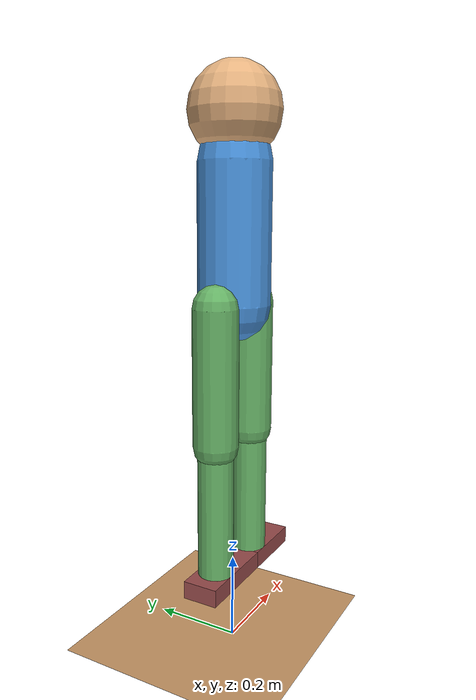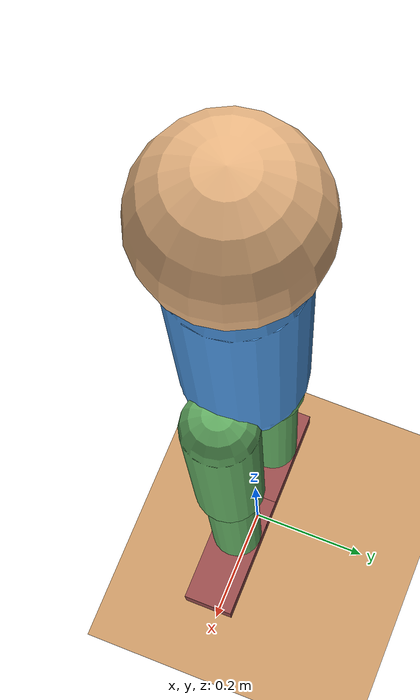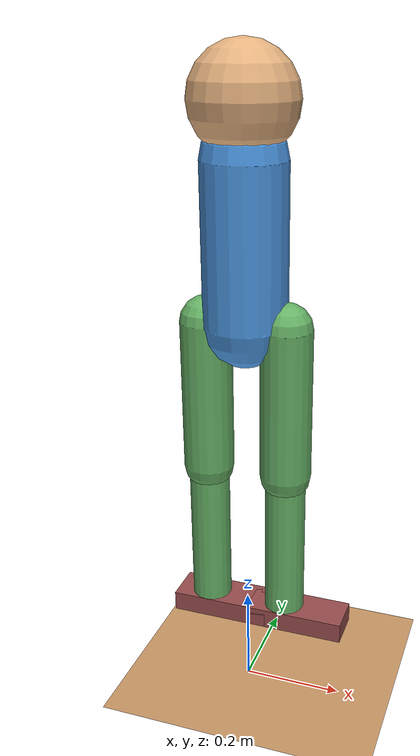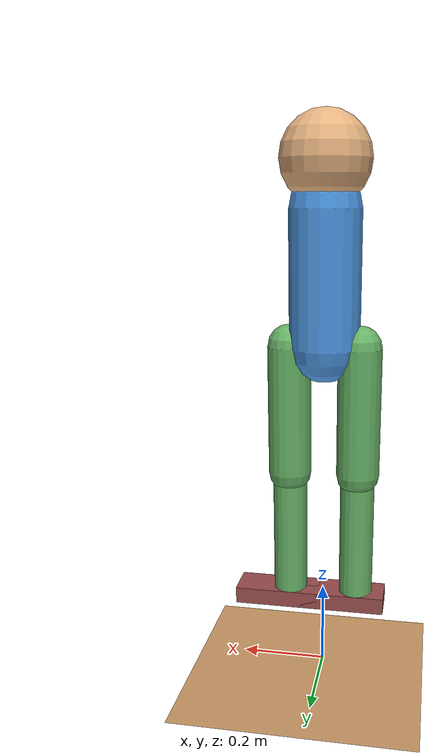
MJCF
<mujoco model="bipedal_walker">
  <option timestep="0.002" gravity="0 0 -9.81" integrator="RK4"/>

  <default>
    <joint armature="0.01" damping="0.5" limited="true"/>
    <geom condim="3" friction="1.0 0.5 0.5" rgba="0.8 0.6 0.4 1"/>
    <motor ctrllimited="true" ctrlrange="-1 1"/>
  </default>

  <visual>
    <rgba haze="0.15 0.25 0.35 1"/>
  </visual>

  <asset>
    <texture type="skybox" builtin="gradient" rgb1="0.3 0.5 0.7" rgb2="0 0 0" width="512" height="3072"/>
    <texture type="2d" name="groundplane" builtin="checker" mark="edge" rgb1="0.2 0.3 0.4" rgb2="0.1 0.2 0.3" markrgb="0.8 0.8 0.8" width="300" height="300"/>
    <material name="groundplane" texture="groundplane" texuniform="true" texrepeat="5 5" reflectance="0.2"/>
  </asset>

  <worldbody>
    <!-- Ground plane -->
    <geom name="floor" type="plane" size="50 50 0.1" material="groundplane"/>

    <!-- Torso (free floating body) -->
    <body name="torso" pos="0 0 0.8">
      <freejoint name="root"/>

      <!-- Torso body -->
      <geom name="torso_geom" type="capsule" fromto="0 0 0 0 0 0.3" size="0.08" rgba="0.3 0.6 0.9 1"/>

      <!-- Site for sensors -->
      <site name="torso_site" pos="0 0 0.15"/>

      <!-- Head -->
      <geom name="head" type="sphere" pos="0 0 0.4" size="0.1" rgba="0.9 0.7 0.5 1"/>

      <!-- ===== LEFT LEG ===== -->
      <body name="left_thigh" pos="-0.08 0 0">
        <!-- Hip joint: rotates leg forward/backward -->
        <joint name="left_hip" type="hinge" axis="0 1 0" range="-90 90"/>

        <!-- Thigh -->
        <geom name="left_thigh_geom" type="capsule" fromto="0 0 0 0 0 -0.3" size="0.05" rgba="0.4 0.7 0.4 1"/>

        <!-- Lower leg -->
        <body name="left_shin" pos="0 0 -0.3">
          <!-- Knee joint: only bends backward -->
          <joint name="left_knee" type="hinge" axis="0 1 0" range="-120 0"/>

          <!-- Shin -->
          <geom name="left_shin_geom" type="capsule" fromto="0 0 0 0 0 -0.3" size="0.04" rgba="0.4 0.7 0.4 1"/>

          <!-- Foot -->
          <body name="left_foot" pos="0 0 -0.3">
            <joint name="left_ankle" type="hinge" axis="0 1 0" range="-45 45"/>
            <geom name="left_foot_geom" type="box" pos="0.03 0 -0.02" size="0.1 0.04 0.02" rgba="0.6 0.3 0.3 1"/>
          </body>
        </body>
      </body>

      <!-- ===== RIGHT LEG ===== -->
      <body name="right_thigh" pos="0.08 0 0">
        <!-- Hip joint -->
        <joint name="right_hip" type="hinge" axis="0 1 0" range="-90 90"/>

        <!-- Thigh -->
        <geom name="right_thigh_geom" type="capsule" fromto="0 0 0 0 0 -0.3" size="0.05" rgba="0.4 0.7 0.4 1"/>

        <!-- Lower leg -->
        <body name="right_shin" pos="0 0 -0.3">
          <!-- Knee joint -->
          <joint name="right_knee" type="hinge" axis="0 1 0" range="-120 0"/>

          <!-- Shin -->
          <geom name="right_shin_geom" type="capsule" fromto="0 0 0 0 0 -0.3" size="0.04" rgba="0.4 0.7 0.4 1"/>

          <!-- Foot -->
          <body name="right_foot" pos="0 0 -0.3">
            <joint name="right_ankle" type="hinge" axis="0 1 0" range="-45 45"/>
            <geom name="right_foot_geom" type="box" pos="0.03 0 -0.02" size="0.1 0.04 0.02" rgba="0.6 0.3 0.3 1"/>
          </body>
        </body>
      </body>
    </body>
  </worldbody>

  <actuator>
    <!-- Left leg motors -->
    <motor name="left_hip_motor" joint="left_hip" gear="100"/>
    <motor name="left_knee_motor" joint="left_knee" gear="100"/>
    <motor name="left_ankle_motor" joint="left_ankle" gear="50"/>

    <!-- Right leg motors -->
    <motor name="right_hip_motor" joint="right_hip" gear="100"/>
    <motor name="right_knee_motor" joint="right_knee" gear="100"/>
    <motor name="right_ankle_motor" joint="right_ankle" gear="50"/>
  </actuator>

  <sensor>
    <!-- Joint positions -->
    <jointpos name="left_hip_pos" joint="left_hip"/>
    <jointpos name="left_knee_pos" joint="left_knee"/>
    <jointpos name="left_ankle_pos" joint="left_ankle"/>
    <jointpos name="right_hip_pos" joint="right_hip"/>
    <jointpos name="right_knee_pos" joint="right_knee"/>
    <jointpos name="right_ankle_pos" joint="right_ankle"/>

    <!-- Joint velocities -->
    <jointvel name="left_hip_vel" joint="left_hip"/>
    <jointvel name="left_knee_vel" joint="left_knee"/>
    <jointvel name="left_ankle_vel" joint="left_ankle"/>
    <jointvel name="right_hip_vel" joint="right_hip"/>
    <jointvel name="right_knee_vel" joint="right_knee"/>
    <jointvel name="right_ankle_vel" joint="right_ankle"/>

    <!-- Torso sensors -->
    <gyro name="torso_gyro" site="torso_site"/>
    <accelerometer name="torso_acc" site="torso_site"/>
  </sensor>
</mujoco>
